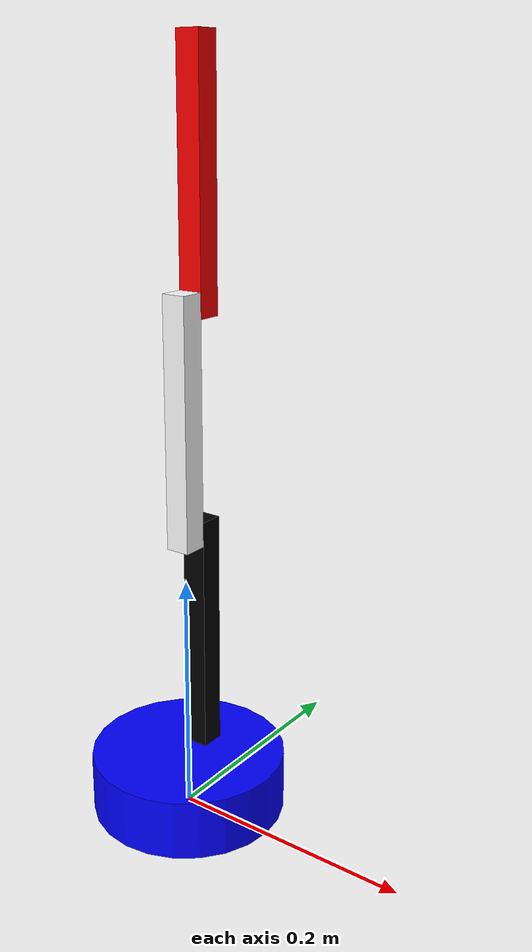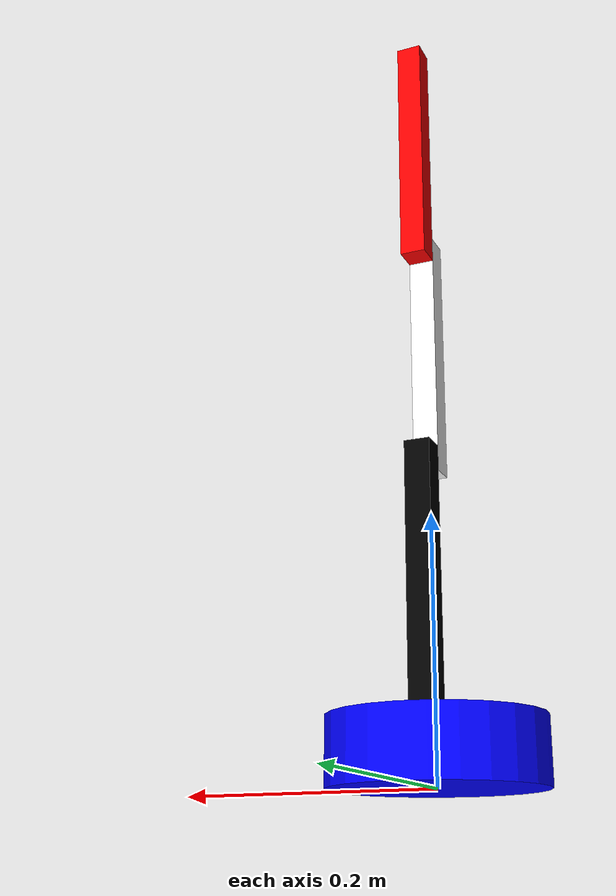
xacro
<?xml version="1.0"?>
<robot xmlns:xacro="http://www.ros.org/wiki/xacro" name="planar_arm">
    <xacro:include filename="$(find lib_planar_arm)/urdf/materials.xacro" />
	<xacro:property name="offset" value="0.02" />
    <xacro:property name="base_link_length" value="0.05" />
    <xacro:property name="base_link_radius" value="0.08" />
    <xacro:property name="link_width" value="0.02" />
	<xacro:property name="link1_length" value="0.20" />
	<xacro:property name="link2_length" value="0.20" />
	<xacro:property name="link3_length" value="0.20" />

    <link name="base_link">
		<visual>
			<geometry>
				<cylinder length="${base_link_length}" radius="${base_link_radius}"/>
			</geometry>
			<origin xyz="0.0 0.0 ${base_link_length/2}"/>
			<material name="blue"/>
		</visual>
		<collision>
			<geometry>
				<cylinder length="${base_link_length}" radius="${base_link_radius}"/>
			</geometry>
			<origin xyz="0.0 0.0 ${base_link_length/2}"/>
			<material name="blue"/>
		</collision>
	</link>

	<joint name="joint_1" type="revolute">
		<parent link="base_link"/>
		<child link="link_1"/>
		<origin xyz="0.0 ${link_width} ${base_link_length+offset}"/>
		<axis xyz="0 1 0"/>
		<limit effort="1000" lower="-3.14" upper="3.14" velocity="5"/>
	</joint>

	<link name="link_1">
		<visual>
			<geometry>
				<box size="${link_width} ${link_width} ${link1_length}"/>
			</geometry>
			<origin xyz="0.0 0.0 ${link1_length/2-offset}"/>
			<material name="black"/>
		</visual>
		<collision>
			<geometry>
				<box size="${link_width} ${link_width} ${link1_length}"/>
			</geometry>
			<origin xyz="0.0 0.0 ${link1_length/2-offset}"/>
			<material name="black"/>
		</collision>
	</link>

	<joint name="joint_2" type="revolute">
		<parent link="link_1"/>
		<child link="link_2"/>
		<origin xyz="0.0 ${-link_width} ${link2_length-offset}"/>
		<axis xyz="0 1 0"/>
		<limit effort="1000" lower="-3.14" upper="3.14" velocity="5"/>
	</joint>

	<link name="link_2">
		<visual>
			<geometry>
				<box size="${link_width} ${link_width} ${link2_length}"/>
			</geometry>
			<origin xyz="0.0 0.0 ${link2_length/2-offset}"/>
			<material name="white"/>
		</visual>
		<collision>
			<geometry>
				<box size="${link_width} ${link_width} ${link2_length}"/>
			</geometry>
			<origin xyz="0.0 0.0 ${link2_length/2-offset}"/>
			<material name="white"/>
		</collision>
	</link>

	<joint name="joint_3" type="revolute">
		<parent link="link_2"/>
		<child link="link_3"/>
		<origin xyz="0.0 ${link_width} ${link3_length-offset}"/>
		<axis xyz="0 1 0"/>
		<limit effort="1000" lower="-3.14" upper="3.14" velocity="5"/>
	</joint>

	<link name="link_3">
		<visual>
			<geometry>
				<box size="${link_width} ${link_width} ${link3_length}"/>
			</geometry>
			<origin xyz="0.0 0.0 ${link3_length/2-offset}"/>
			<material name="red"/>
		</visual>
		<collision>
			<geometry>
				<box size="${link_width} ${link_width} ${link3_length}"/>
			</geometry>
			<origin xyz="0.0 0.0 ${link3_length/2-offset}"/>
		</collision>
	</link>

</robot>

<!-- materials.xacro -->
<robot>
    <material name="blue">
		<color rgba="0 0 1 1"/>
	</material>
	<material name="red">
		<color rgba="1 0 0 1"/>
	</material>
	<material name="green">
		<color rgba="0 1 0 1"/>
	</material>
	<material name="black">
		<color rgba="0 0 0 1"/>
	</material>
	<material name="white">
		<color rgba="1 1 1 1"/>
	</material>
</robot>
